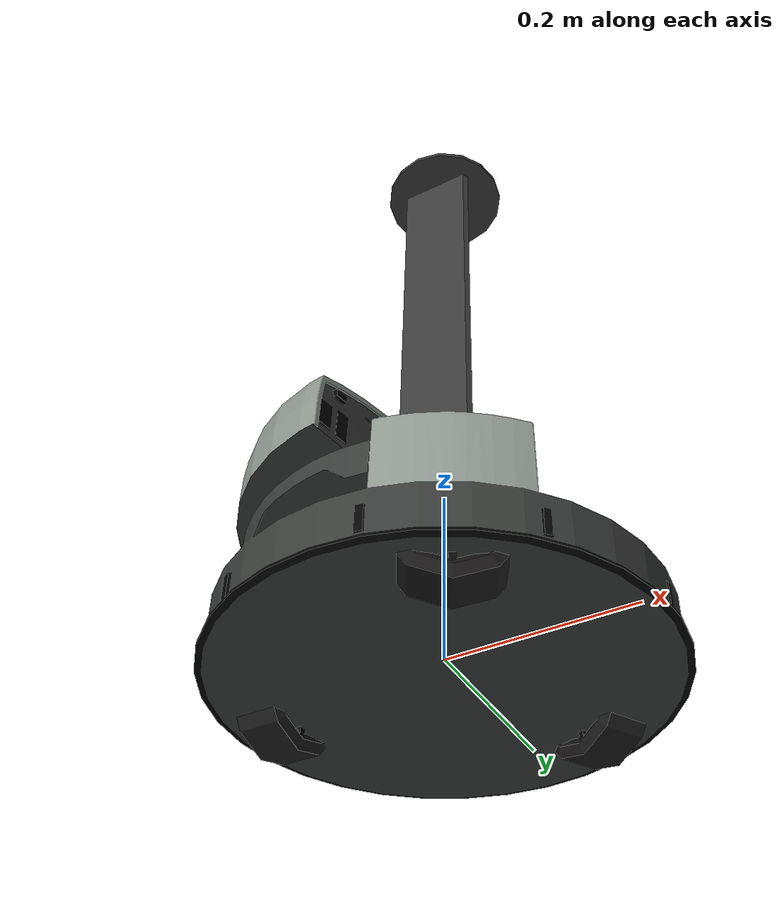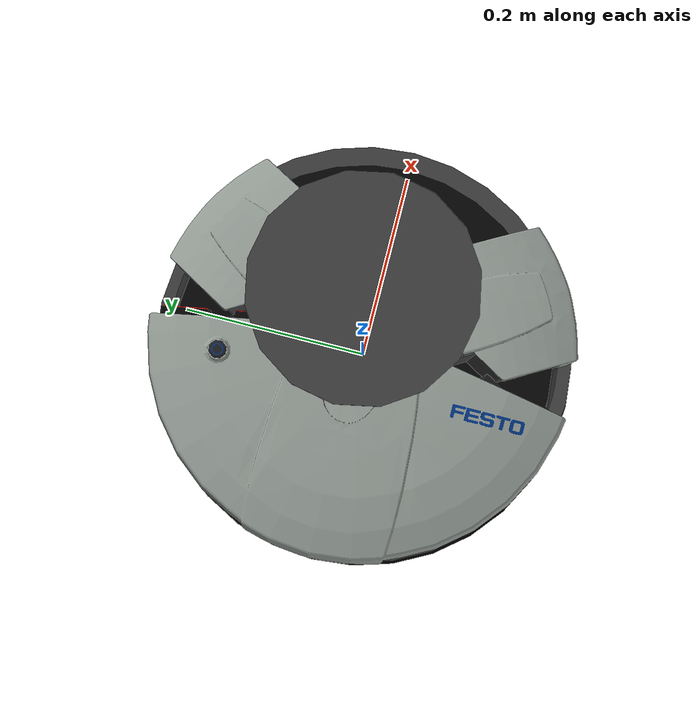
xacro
<?xml version="1.0"?>
<robot name="robotino" xmlns:xacro="http://www.ros.org/wiki/xacro">

    <!-- NOTE Wheels have 0.01 offset from ground to match with visual texture floor in LAB world -->

    <!-- Base Robotino -->
    <link name="base_link">
        <inertial>
            <mass value="10.0"/>
            <inertia ixx="0.1" ixy="0.0" ixz="0.0" iyy="0.1" iyz="0.0" izz="0.1"/>
            <origin xyz="0 0 0" rpy="0 0 0"/>
        </inertial>

        <visual>
            <origin xyz="0 0 -0.03" rpy="0 0 0"/>
            <geometry>
                <mesh filename="package://justina_description/meshes/robotino_low_poly/Robotino3_LowPoly.dae" scale="1 1 1"/>
            </geometry>
        </visual>
        <collision>
            <origin xyz="0 0 -0.03" rpy="0 0 0"/>
            <geometry>
                <mesh filename="package://justina_description/meshes/robotino_low_poly/Robotino3_Collider_LowPoly.dae" scale="1 1 1"/>
            </geometry>
        </collision>
    </link>

    <!-- Wheel Macro -->
    <xacro:macro name="wheel" params="name x y z rpy">
        <link name="${name}_link">
            <inertial>
                <mass value="0.5"/>
                <inertia ixx="0.001" ixy="0.0" ixz="0.0" iyy="0.001" iyz="0.0" izz="0.001"/>
                <origin xyz="0 0 0" rpy="0 0 0"/>
            </inertial>

            <visual>
                <origin xyz="0 0 0" rpy="0 0 0"/>
                <geometry>
                    <mesh filename="package://justina_description/meshes/robotino_low_poly/Robotino3_Wheel_Very_LowPoly.dae" scale="1 1 1"/>
                </geometry>
            </visual>
            <collision>
                <origin xyz="0 0 0" rpy="0 0 0"/>
                <geometry>
                    <mesh filename="package://justina_description/meshes/robotino_low_poly/Robotino3_SplitWheel_Collider.dae" scale="1 1 1"/>
                </geometry>
            </collision>
        </link>

        <joint name="${name}_joint" type="continuous">
            <parent link="base_link"/>
            <child link="${name}_link"/>
            <origin xyz="${x} ${y} ${z}" rpy="0 0 ${rpy}"/>
            <axis xyz="0 1 0"/>
        </joint>

        <transmission name="${name}_trans">
            <type>transmission_interface/SimpleTransmission</type>
            <joint name="${name}_joint">
                <hardwareInterface>hardware_interface/VelocityJointInterface</hardwareInterface>
            </joint>
            <actuator name="${name}_motor">
                <hardwareInterface>hardware_interface/VelocityJointInterface</hardwareInterface>
                <mechanicalReduction>1</mechanicalReduction>
            </actuator>
        </transmission>
    </xacro:macro>

    <!-- Wheels -->
    <xacro:wheel name="wheel0" x="-0.1825" y="-0.0001" z="0.01" rpy="1.570796"/>
    <xacro:wheel name="wheel1" x="0.090625" y="-0.157067" z="0.01" rpy="3.665191"/>
    <xacro:wheel name="wheel2" x="0.090625" y="0.156867" z="0.01" rpy="-0.523599"/>

    <!-- Hokuyo LIDAR -->
    <link name="laser_link">
        <inertial>
            <mass value="0.3"/>
            <inertia ixx="0.0001" ixy="0.0" ixz="0.0" iyy="0.0001" iyz="0.0" izz="0.0001"/>
            <origin xyz="0 0 0" rpy="0 0 0"/>
        </inertial>

        <visual>
            <origin xyz="0 0 0" rpy="0 0 0"/>
            <geometry>
                <mesh filename="package://justina_description/meshes/robotino_low_poly/sensors/Hokuyo_Clean.dae" scale="1 1 1"/>
            </geometry>
        </visual>
        <collision>
            <origin xyz="0 0 0.0" rpy="0 0 0"/>
            <geometry>
                <box size="0.05 0.05 0.07"/>
            </geometry>
        </collision>
    </link>

    <joint name="base_to_hokuyo" type="fixed">
        <parent link="base_link"/>
        <child link="laser_link"/>
        <origin xyz="0.07 0.0 0.16" rpy="0 0 0"/>
    </joint>

    <!-- tower -->
    <link name="tower_link">
        <inertial>
            <mass value="2.0"/>
            <inertia ixx="0.01" ixy="0.0" ixz="0.0" iyy="0.01" iyz="0.0" izz="0.01"/>
            <origin xyz="0 0 0.5" rpy="0 0 0"/>
        </inertial>

        <visual>
            <origin xyz="0 0 0" rpy="0 0 0"/>
            <geometry>
                <mesh filename="package://justina_description/meshes/robotino_low_poly/Justina_Platform_LowPoly.dae" scale="1 1 1"/>
            </geometry>
        </visual>
        <collision>
            <origin xyz="0 0 0.49" rpy="0 0 0"/>
            <geometry>
                <cylinder radius="0.075" length="0.59"/>
            </geometry>
        </collision>
    </link>

    <!-- tower have an offset of 0.06 -->
    <joint name="tower_joint" type="fixed">
        <parent link="base_link"/>
        <child link="tower_link"/>
        <origin xyz="0 0 -0.05" rpy="0 0 0"/>
    </joint>

</robot>
